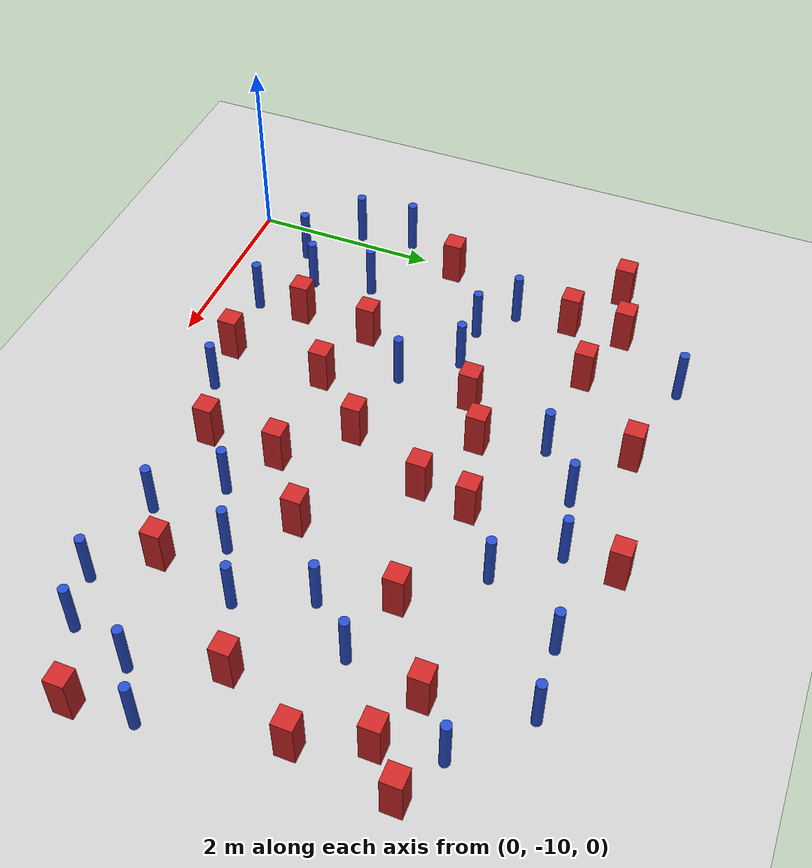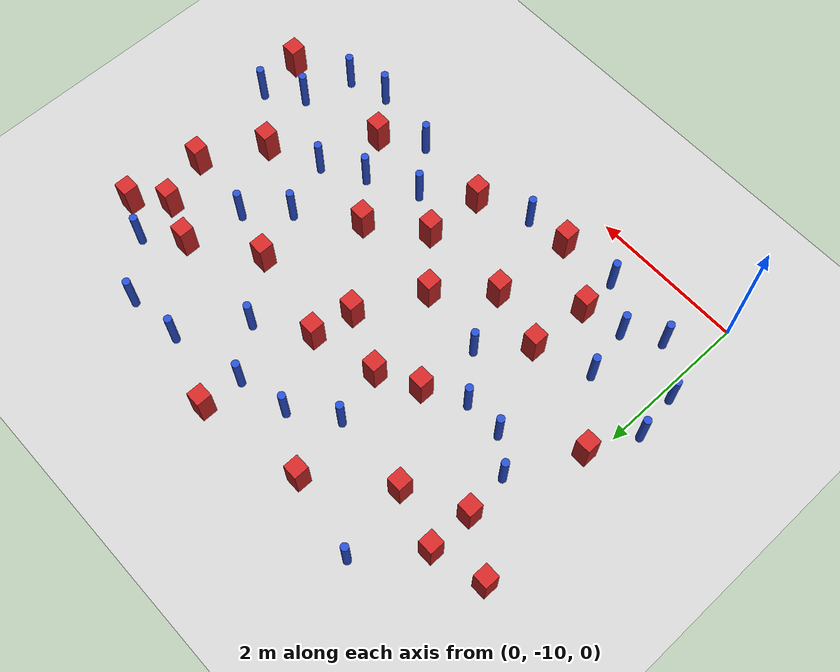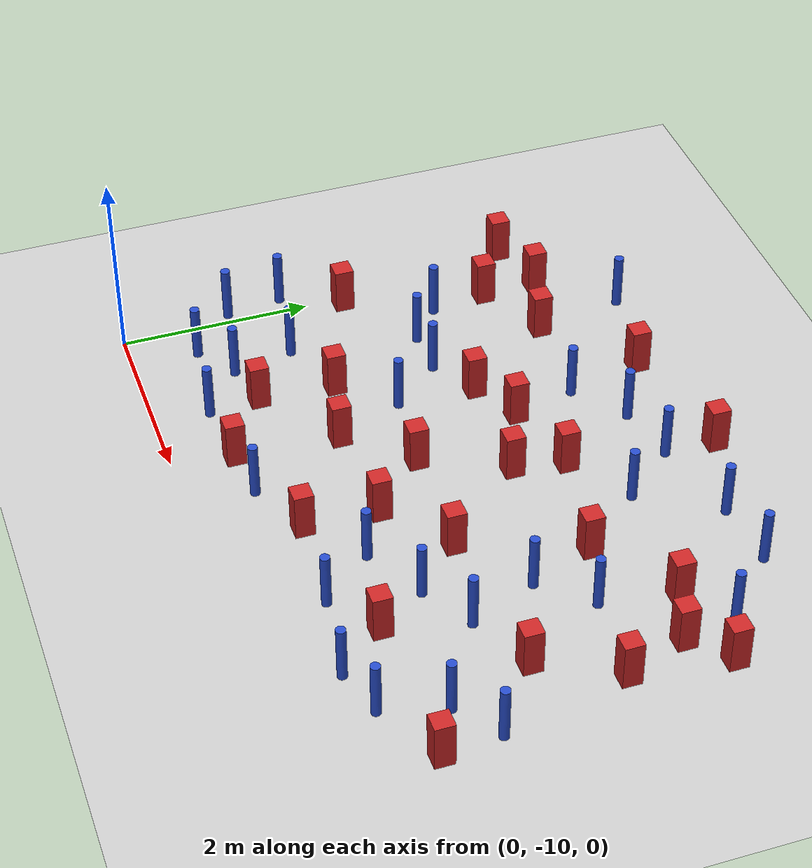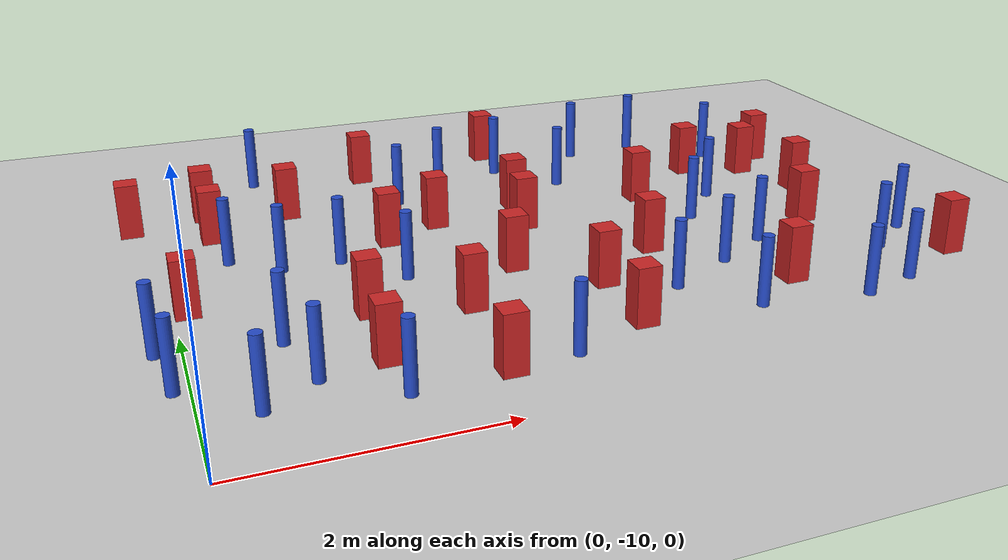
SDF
<sdf version="1.6">
 <world name="default">
  <model name="ground_plane">
   <static>1</static>
   <link name="link">
    <collision name="collision">
     <geometry><plane><normal>0 0 1</normal><size>100 100</size></plane></geometry>
     <surface><friction><ode><mu>100</mu><mu2>50</mu2></ode></friction></surface>
    </collision>
    <visual name="visual">
     <cast_shadows>0</cast_shadows>
     <geometry><plane><normal>0 0 1</normal><size>100 100</size></plane></geometry>
     <material>
      <ambient>1.0 1.0 1.0 1.0</ambient>
      <diffuse>0.8 0.8 0.8 1.0</diffuse>
      <specular>0.01 0.01 0.01 1.000000</specular>
     </material>
    </visual>
   </link>
  </model>
  <model name="pole_obstacle4">
   <static>true</static>
   <pose>-0.115058704292 -8.83198249359 -3.09024884793e-07 -7.19054271912e-07 -2.11315075151e-07 -1.93935509274e-07</pose>
   <link name="link">
    <pose>0 0 0.3 0 -0 0</pose>
    <inertial>
     <mass>1</mass>
     <inertia><ixx>0.145833</ixx><ixy>0</ixy><ixz>0</ixz><iyy>0.145833</iyy><iyz>0</iyz><izz>0.125</izz></inertia>
    </inertial>
    <collision name="collision">
     <geometry><cylinder><radius>0.05</radius><length>.6</length></cylinder></geometry>
    </collision>
    <visual name="visual">
     <geometry><cylinder><radius>0.05</radius><length>.6</length></cylinder></geometry>
     <material>
      <script><name>Gazebo/Blue</name><uri>file://media/materials/scripts/gazebo.material</uri></script>
     </material>
    </visual>
   </link>
  </model>
  <model name="square_post_obstacle6">
   <static>true</static>
   <pose>4.51285772094 -6.5213713689 -4.36207812815e-07 3.75137919937e-06 9.77721102514e-07 2.47381364184e-05</pose>
   <link name="link">
    <pose>0 0 0.25 0 -0 0</pose>
    <inertial>
     <mass>100</mass>
     <inertia>
      <ixx>0.166667</ixx>
      <ixy>0</ixy>
      <ixz>0</ixz>
      <iyy>0.166667</iyy>
      <iyz>0</iyz>
      <izz>0.166667</izz>
     </inertia>
    </inertial>
    <collision name="collision"><geometry><box><size>.2 .2 .5</size></box></geometry></collision>
    <visual name="visual">
     <geometry><box><size>.2 .2 .5</size></box></geometry>
     <material>
      <script><name>Gazebo/Red</name><uri>file://media/materials/scripts/gazebo.material</uri></script>
     </material>
    </visual>
   </link>
  </model>
  <model name="square_post_obstacle8">
   <static>true</static>
   <pose>2.1394990033 -9.37077173725 -4.36207812815e-07 3.75137919937e-06 9.77721102514e-07 2.47381364184e-05</pose>
   <link name="link">
    <pose>0 0 0.25 0 -0 0</pose>
    <inertial>
     <mass>100</mass>
     <inertia>
      <ixx>0.166667</ixx>
      <ixy>0</ixy>
      <ixz>0</ixz>
      <iyy>0.166667</iyy>
      <iyz>0</iyz>
      <izz>0.166667</izz>
     </inertia>
    </inertial>
    <collision name="collision"><geometry><box><size>.2 .2 .5</size></box></geometry></collision>
    <visual name="visual">
     <geometry><box><size>.2 .2 .5</size></box></geometry>
     <material>
      <script><name>Gazebo/Red</name><uri>file://media/materials/scripts/gazebo.material</uri></script>
     </material>
    </visual>
   </link>
  </model>
  <model name="pole_obstacle18">
   <static>true</static>
   <pose>2.68748436693 -9.3146482331 -3.09024884848e-07 -7.19054271902e-07 -2.11315075199e-07 -1.93935509286e-07</pose>
   <link name="link">
    <pose>0 0 0.3 0 -0 0</pose>
    <inertial>
     <mass>1</mass>
     <inertia><ixx>0.145833</ixx><ixy>0</ixy><ixz>0</ixz><iyy>0.145833</iyy><iyz>0</iyz><izz>0.125</izz></inertia>
    </inertial>
    <collision name="collision">
     <geometry><cylinder><radius>0.05</radius><length>.6</length></cylinder></geometry>
    </collision>
    <visual name="visual">
     <geometry><cylinder><radius>0.05</radius><length>.6</length></cylinder></geometry>
     <material>
      <script><name>Gazebo/Blue</name><uri>file://media/materials/scripts/gazebo.material</uri></script>
     </material>
    </visual>
   </link>
  </model>
  <model name="pole_obstacle19">
   <static>true</static>
   <pose>5.15001924405 -5.00147786927 -3.09024884793e-07 -7.19054271911e-07 -2.1131507516e-07 -1.93935509277e-07</pose>
   <link name="link">
    <pose>0 0 0.3 0 -0 0</pose>
    <inertial>
     <mass>1</mass>
     <inertia><ixx>0.145833</ixx><ixy>0</ixy><ixz>0</ixz><iyy>0.145833</iyy><iyz>0</iyz><izz>0.125</izz></inertia>
    </inertial>
    <collision name="collision">
     <geometry><cylinder><radius>0.05</radius><length>.6</length></cylinder></geometry>
    </collision>
    <visual name="visual">
     <geometry><cylinder><radius>0.05</radius><length>.6</length></cylinder></geometry>
     <material>
      <script><name>Gazebo/Blue</name><uri>file://media/materials/scripts/gazebo.material</uri></script>
     </material>
    </visual>
   </link>
  </model>
  <model name="pole_obstacle25">
   <static>true</static>
   <pose>4.43334474144 -5.06521078168 -3.09024884793e-07 -7.19054271911e-07 -2.1131507516e-07 -1.93935509277e-07</pose>
   <link name="link">
    <pose>0 0 0.3 0 -0 0</pose>
    <inertial>
     <mass>1</mass>
     <inertia><ixx>0.145833</ixx><ixy>0</ixy><ixz>0</ixz><iyy>0.145833</iyy><iyz>0</iyz><izz>0.125</izz></inertia>
    </inertial>
    <collision name="collision">
     <geometry><cylinder><radius>0.05</radius><length>.6</length></cylinder></geometry>
    </collision>
    <visual name="visual">
     <geometry><cylinder><radius>0.05</radius><length>.6</length></cylinder></geometry>
     <material>
      <script><name>Gazebo/Blue</name><uri>file://media/materials/scripts/gazebo.material</uri></script>
     </material>
    </visual>
   </link>
  </model>
  <model name="square_post_obstacle29">
   <static>true</static>
   <pose>-0.207751065891 -5.72229155559 -4.36207812815e-07 3.75137919937e-06 9.77721102514e-07 2.47381364184e-05</pose>
   <link name="link">
    <pose>0 0 0.25 0 -0 0</pose>
    <inertial>
     <mass>100</mass>
     <inertia>
      <ixx>0.166667</ixx>
      <ixy>0</ixy>
      <ixz>0</ixz>
      <iyy>0.166667</iyy>
      <iyz>0</iyz>
      <izz>0.166667</izz>
     </inertia>
    </inertial>
    <collision name="collision"><geometry><box><size>.2 .2 .5</size></box></geometry></collision>
    <visual name="visual">
     <geometry><box><size>.2 .2 .5</size></box></geometry>
     <material>
      <script><name>Gazebo/Red</name><uri>file://media/materials/scripts/gazebo.material</uri></script>
     </material>
    </visual>
   </link>
  </model>
  <model name="square_post_obstacle34">
   <static>true</static>
   <pose>0.465647620218 -6.13648864373 -4.36207812815e-07 3.75137919937e-06 9.77721102514e-07 2.47381364184e-05</pose>
   <link name="link">
    <pose>0 0 0.25 0 -0 0</pose>
    <inertial>
     <mass>100</mass>
     <inertia>
      <ixx>0.166667</ixx>
      <ixy>0</ixy>
      <ixz>0</ixz>
      <iyy>0.166667</iyy>
      <iyz>0</iyz>
      <izz>0.166667</izz>
     </inertia>
    </inertial>
    <collision name="collision"><geometry><box><size>.2 .2 .5</size></box></geometry></collision>
    <visual name="visual">
     <geometry><box><size>.2 .2 .5</size></box></geometry>
     <material>
      <script><name>Gazebo/Red</name><uri>file://media/materials/scripts/gazebo.material</uri></script>
     </material>
    </visual>
   </link>
  </model>
  <model name="square_post_obstacle48">
   <static>true</static>
   <pose>2.08679121136 -5.01650331721 -4.36207812815e-07 3.75137919937e-06 9.77721102514e-07 2.47381364184e-05</pose>
   <link name="link">
    <pose>0 0 0.25 0 -0 0</pose>
    <inertial>
     <mass>100</mass>
     <inertia>
      <ixx>0.166667</ixx>
      <ixy>0</ixy>
      <ixz>0</ixz>
      <iyy>0.166667</iyy>
      <iyz>0</iyz>
      <izz>0.166667</izz>
     </inertia>
    </inertial>
    <collision name="collision"><geometry><box><size>.2 .2 .5</size></box></geometry></collision>
    <visual name="visual">
     <geometry><box><size>.2 .2 .5</size></box></geometry>
     <material>
      <script><name>Gazebo/Red</name><uri>file://media/materials/scripts/gazebo.material</uri></script>
     </material>
    </visual>
   </link>
  </model>
  <model name="square_post_obstacle55">
   <static>true</static>
   <pose>3.3022838775 -6.28655651789 -4.36207812815e-07 3.75137919937e-06 9.77721102514e-07 2.47381364184e-05</pose>
   <link name="link">
    <pose>0 0 0.25 0 -0 0</pose>
    <inertial>
     <mass>100</mass>
     <inertia>
      <ixx>0.166667</ixx>
      <ixy>0</ixy>
      <ixz>0</ixz>
      <iyy>0.166667</iyy>
      <iyz>0</iyz>
      <izz>0.166667</izz>
     </inertia>
    </inertial>
    <collision name="collision"><geometry><box><size>.2 .2 .5</size></box></geometry></collision>
    <visual name="visual">
     <geometry><box><size>.2 .2 .5</size></box></geometry>
     <material>
      <script><name>Gazebo/Red</name><uri>file://media/materials/scripts/gazebo.material</uri></script>
     </material>
    </visual>
   </link>
  </model>
  <model name="pole_obstacle70">
   <static>true</static>
   <pose>2.27496375105 -5.82832566073 -3.09024884793e-07 -7.19054271912e-07 -2.11315075134e-07 -1.93935509266e-07</pose>
   <link name="link">
    <pose>0 0 0.3 0 -0 0</pose>
    <inertial>
     <mass>1</mass>
     <inertia><ixx>0.145833</ixx><ixy>0</ixy><ixz>0</ixz><iyy>0.145833</iyy><iyz>0</iyz><izz>0.125</izz></inertia>
    </inertial>
    <collision name="collision">
     <geometry><cylinder><radius>0.05</radius><length>.6</length></cylinder></geometry>
    </collision>
    <visual name="visual">
     <geometry><cylinder><radius>0.05</radius><length>.6</length></cylinder></geometry>
     <material>
      <script><name>Gazebo/Blue</name><uri>file://media/materials/scripts/gazebo.material</uri></script>
     </material>
    </visual>
   </link>
  </model>
  <model name="pole_obstacle74">
   <static>true</static>
   <pose>0.713129846369 -8.3733991202 -3.09024884793e-07 -7.19054271911e-07 -2.11315075158e-07 -1.93935509277e-07</pose>
   <link name="link">
    <pose>0 0 0.3 0 -0 0</pose>
    <inertial>
     <mass>1</mass>
     <inertia><ixx>0.145833</ixx><ixy>0</ixy><ixz>0</ixz><iyy>0.145833</iyy><iyz>0</iyz><izz>0.125</izz></inertia>
    </inertial>
    <collision name="collision">
     <geometry><cylinder><radius>0.05</radius><length>.6</length></cylinder></geometry>
    </collision>
    <visual name="visual">
     <geometry><cylinder><radius>0.05</radius><length>.6</length></cylinder></geometry>
     <material>
      <script><name>Gazebo/Blue</name><uri>file://media/materials/scripts/gazebo.material</uri></script>
     </material>
    </visual>
   </link>
  </model>
  <model name="square_post_obstacle68">
   <static>true</static>
   <pose>1.42236585204 -8.10761064455 -4.36207812815e-07 3.75137919937e-06 9.77721102514e-07 2.47381364184e-05</pose>
   <link name="link">
    <pose>0 0 0.25 0 -0 0</pose>
    <inertial>
     <mass>100</mass>
     <inertia>
      <ixx>0.166667</ixx>
      <ixy>0</ixy>
      <ixz>0</ixz>
      <iyy>0.166667</iyy>
      <iyz>0</iyz>
      <izz>0.166667</izz>
     </inertia>
    </inertial>
    <collision name="collision"><geometry><box><size>.2 .2 .5</size></box></geometry></collision>
    <visual name="visual">
     <geometry><box><size>.2 .2 .5</size></box></geometry>
     <material>
      <script><name>Gazebo/Red</name><uri>file://media/materials/scripts/gazebo.material</uri></script>
     </material>
    </visual>
   </link>
  </model>
  <model name="pole_obstacle80">
   <static>true</static>
   <pose>6.43676853646 -8.1058683709 -3.09024884793e-07 -7.19054271912e-07 -2.1131507513e-07 -1.93935509261e-07</pose>
   <link name="link">
    <pose>0 0 0.3 0 -0 0</pose>
    <inertial>
     <mass>1</mass>
     <inertia><ixx>0.145833</ixx><ixy>0</ixy><ixz>0</ixz><iyy>0.145833</iyy><iyz>0</iyz><izz>0.125</izz></inertia>
    </inertial>
    <collision name="collision">
     <geometry><cylinder><radius>0.05</radius><length>.6</length></cylinder></geometry>
    </collision>
    <visual name="visual">
     <geometry><cylinder><radius>0.05</radius><length>.6</length></cylinder></geometry>
     <material>
      <script><name>Gazebo/Blue</name><uri>file://media/materials/scripts/gazebo.material</uri></script>
     </material>
    </visual>
   </link>
  </model>
  <model name="pole_obstacle82">
   <static>true</static>
   <pose>5.78730302565 -5.5845266317 -3.09024884793e-07 -7.19054271911e-07 -2.1131507516e-07 -1.93935509277e-07</pose>
   <link name="link">
    <pose>0 0 0.3 0 -0 0</pose>
    <inertial>
     <mass>1</mass>
     <inertia><ixx>0.145833</ixx><ixy>0</ixy><ixz>0</ixz><iyy>0.145833</iyy><iyz>0</iyz><izz>0.125</izz></inertia>
    </inertial>
    <collision name="collision">
     <geometry><cylinder><radius>0.05</radius><length>.6</length></cylinder></geometry>
    </collision>
    <visual name="visual">
     <geometry><cylinder><radius>0.05</radius><length>.6</length></cylinder></geometry>
     <material>
      <script><name>Gazebo/Blue</name><uri>file://media/materials/scripts/gazebo.material</uri></script>
     </material>
    </visual>
   </link>
  </model>
  <model name="square_post_obstacle79">
   <static>true</static>
   <pose>2.44633247504 -6.49968213649 -4.36207812815e-07 3.75137919937e-06 9.77721102514e-07 2.47381364184e-05</pose>
   <link name="link">
    <pose>0 0 0.25 0 -0 0</pose>
    <inertial>
     <mass>100</mass>
     <inertia>
      <ixx>0.166667</ixx>
      <ixy>0</ixy>
      <ixz>0</ixz>
      <iyy>0.166667</iyy>
      <iyz>0</iyz>
      <izz>0.166667</izz>
     </inertia>
    </inertial>
    <collision name="collision"><geometry><box><size>.2 .2 .5</size></box></geometry></collision>
    <visual name="visual">
     <geometry><box><size>.2 .2 .5</size></box></geometry>
     <material>
      <script><name>Gazebo/Red</name><uri>file://media/materials/scripts/gazebo.material</uri></script>
     </material>
    </visual>
   </link>
  </model>
  <model name="pole_obstacle91">
   <static>true</static>
   <pose>5.20424854259 -6.71830189902 -3.09024884793e-07 -7.19054271911e-07 -2.1131507516e-07 -1.93935509277e-07</pose>
   <link name="link">
    <pose>0 0 0.3 0 -0 0</pose>
    <inertial>
     <mass>1</mass>
     <inertia><ixx>0.145833</ixx><ixy>0</ixy><ixz>0</ixz><iyy>0.145833</iyy><iyz>0</iyz><izz>0.125</izz></inertia>
    </inertial>
    <collision name="collision">
     <geometry><cylinder><radius>0.05</radius><length>.6</length></cylinder></geometry>
    </collision>
    <visual name="visual">
     <geometry><cylinder><radius>0.05</radius><length>.6</length></cylinder></geometry>
     <material>
      <script><name>Gazebo/Blue</name><uri>file://media/materials/scripts/gazebo.material</uri></script>
     </material>
    </visual>
   </link>
  </model>
  <model name="square_post_obstacle85">
   <static>true</static>
   <pose>3.34084371499 -9.02304019956 -4.36207812815e-07 3.75137919937e-06 9.77721102514e-07 2.47381364184e-05</pose>
   <link name="link">
    <pose>0 0 0.25 0 -0 0</pose>
    <inertial>
     <mass>100</mass>
     <inertia>
      <ixx>0.166667</ixx>
      <ixy>0</ixy>
      <ixz>0</ixz>
      <iyy>0.166667</iyy>
      <iyz>0</iyz>
      <izz>0.166667</izz>
     </inertia>
    </inertial>
    <collision name="collision"><geometry><box><size>.2 .2 .5</size></box></geometry></collision>
    <visual name="visual">
     <geometry><box><size>.2 .2 .5</size></box></geometry>
     <material>
      <script><name>Gazebo/Red</name><uri>file://media/materials/scripts/gazebo.material</uri></script>
     </material>
    </visual>
   </link>
  </model>
  <model name="pole_obstacle94">
   <static>true</static>
   <pose>0.93045135598 -7.04574034802 -3.09024884793e-07 -7.19054271912e-07 -2.11315075129e-07 -1.93935509261e-07</pose>
   <link name="link">
    <pose>0 0 0.3 0 -0 0</pose>
    <inertial>
     <mass>1</mass>
     <inertia><ixx>0.145833</ixx><ixy>0</ixy><ixz>0</ixz><iyy>0.145833</iyy><iyz>0</iyz><izz>0.125</izz></inertia>
    </inertial>
    <collision name="collision">
     <geometry><cylinder><radius>0.05</radius><length>.6</length></cylinder></geometry>
    </collision>
    <visual name="visual">
     <geometry><cylinder><radius>0.05</radius><length>.6</length></cylinder></geometry>
     <material>
      <script><name>Gazebo/Blue</name><uri>file://media/materials/scripts/gazebo.material</uri></script>
     </material>
    </visual>
   </link>
  </model>
  <model name="square_post_obstacle87">
   <static>true</static>
   <pose>1.36780322073 -8.9043474202 -4.36207812815e-07 3.75137919937e-06 9.77721102514e-07 2.47381364184e-05</pose>
   <link name="link">
    <pose>0 0 0.25 0 -0 0</pose>
    <inertial>
     <mass>100</mass>
     <inertia>
      <ixx>0.166667</ixx>
      <ixy>0</ixy>
      <ixz>0</ixz>
      <iyy>0.166667</iyy>
      <iyz>0</iyz>
      <izz>0.166667</izz>
     </inertia>
    </inertial>
    <collision name="collision"><geometry><box><size>.2 .2 .5</size></box></geometry></collision>
    <visual name="visual">
     <geometry><box><size>.2 .2 .5</size></box></geometry>
     <material>
      <script><name>Gazebo/Red</name><uri>file://media/materials/scripts/gazebo.material</uri></script>
     </material>
    </visual>
   </link>
  </model>
  <model name="pole_obstacle95">
   <static>true</static>
   <pose>4.36735843338 -9.0984280892 -3.09024884793e-07 -7.19054271912e-07 -2.1131507513e-07 -1.93935509261e-07</pose>
   <link name="link">
    <pose>0 0 0.3 0 -0 0</pose>
    <inertial>
     <mass>1</mass>
     <inertia><ixx>0.145833</ixx><ixy>0</ixy><ixz>0</ixz><iyy>0.145833</iyy><iyz>0</iyz><izz>0.125</izz></inertia>
    </inertial>
    <collision name="collision">
     <geometry><cylinder><radius>0.05</radius><length>.6</length></cylinder></geometry>
    </collision>
    <visual name="visual">
     <geometry><cylinder><radius>0.05</radius><length>.6</length></cylinder></geometry>
     <material>
      <script><name>Gazebo/Blue</name><uri>file://media/materials/scripts/gazebo.material</uri></script>
     </material>
    </visual>
   </link>
  </model>
  <model name="pole_obstacle103">
   <static>true</static>
   <pose>0.530082113181 -6.72482676579 -3.09024884793e-07 -7.19054271912e-07 -2.1131507513e-07 -1.93935509261e-07</pose>
   <link name="link">
    <pose>0 0 0.3 0 -0 0</pose>
    <inertial>
     <mass>1</mass>
     <inertia><ixx>0.145833</ixx><ixy>0</ixy><ixz>0</ixz><iyy>0.145833</iyy><iyz>0</iyz><izz>0.125</izz></inertia>
    </inertial>
    <collision name="collision">
     <geometry><cylinder><radius>0.05</radius><length>.6</length></cylinder></geometry>
    </collision>
    <visual name="visual">
     <geometry><cylinder><radius>0.05</radius><length>.6</length></cylinder></geometry>
     <material>
      <script><name>Gazebo/Blue</name><uri>file://media/materials/scripts/gazebo.material</uri></script>
     </material>
    </visual>
   </link>
  </model>
  <model name="square_post_obstacle100">
   <static>true</static>
   <pose>6.15156768855 -6.80994731676 -4.36207812815e-07 3.75137919937e-06 9.77721102514e-07 2.47381364184e-05</pose>
   <link name="link">
    <pose>0 0 0.25 0 -0 0</pose>
    <inertial>
     <mass>100</mass>
     <inertia>
      <ixx>0.166667</ixx>
      <ixy>0</ixy>
      <ixz>0</ixz>
      <iyy>0.166667</iyy>
      <iyz>0</iyz>
      <izz>0.166667</izz>
     </inertia>
    </inertial>
    <collision name="collision"><geometry><box><size>.2 .2 .5</size></box></geometry></collision>
    <visual name="visual">
     <geometry><box><size>.2 .2 .5</size></box></geometry>
     <material>
      <script><name>Gazebo/Red</name><uri>file://media/materials/scripts/gazebo.material</uri></script>
     </material>
    </visual>
   </link>
  </model>
  <model name="square_post_obstacle101">
   <static>true</static>
   <pose>2.78489466506 -7.67997605592 -4.36207812815e-07 3.75137919937e-06 9.77721102514e-07 2.47381364184e-05</pose>
   <link name="link">
    <pose>0 0 0.25 0 -0 0</pose>
    <inertial>
     <mass>100</mass>
     <inertia>
      <ixx>0.166667</ixx>
      <ixy>0</ixy>
      <ixz>0</ixz>
      <iyy>0.166667</iyy>
      <iyz>0</iyz>
      <izz>0.166667</izz>
     </inertia>
    </inertial>
    <collision name="collision"><geometry><box><size>.2 .2 .5</size></box></geometry></collision>
    <visual name="visual">
     <geometry><box><size>.2 .2 .5</size></box></geometry>
     <material>
      <script><name>Gazebo/Red</name><uri>file://media/materials/scripts/gazebo.material</uri></script>
     </material>
    </visual>
   </link>
  </model>
  <model name="square_post_obstacle104">
   <static>true</static>
   <pose>5.34188920313 -5.95813045349 -4.36207812815e-07 3.75137919937e-06 9.77721102514e-07 2.47381364184e-05</pose>
   <link name="link">
    <pose>0 0 0.25 0 -0 0</pose>
    <inertial>
     <mass>100</mass>
     <inertia>
      <ixx>0.166667</ixx>
      <ixy>0</ixy>
      <ixz>0</ixz>
      <iyy>0.166667</iyy>
      <iyz>0</iyz>
      <izz>0.166667</izz>
     </inertia>
    </inertial>
    <collision name="collision"><geometry><box><size>.2 .2 .5</size></box></geometry></collision>
    <visual name="visual">
     <geometry><box><size>.2 .2 .5</size></box></geometry>
     <material>
      <script><name>Gazebo/Red</name><uri>file://media/materials/scripts/gazebo.material</uri></script>
     </material>
    </visual>
   </link>
  </model>
  <model name="pole_obstacle111">
   <static>true</static>
   <pose>3.46028985631 -5.28692378965 -3.09024884793e-07 -7.19054271912e-07 -2.11315075134e-07 -1.93935509266e-07</pose>
   <link name="link">
    <pose>0 0 0.3 0 -0 0</pose>
    <inertial>
     <mass>1</mass>
     <inertia><ixx>0.145833</ixx><ixy>0</ixy><ixz>0</ixz><iyy>0.145833</iyy><iyz>0</iyz><izz>0.125</izz></inertia>
    </inertial>
    <collision name="collision">
     <geometry><cylinder><radius>0.05</radius><length>.6</length></cylinder></geometry>
    </collision>
    <visual name="visual">
     <geometry><cylinder><radius>0.05</radius><length>.6</length></cylinder></geometry>
     <material>
      <script><name>Gazebo/Blue</name><uri>file://media/materials/scripts/gazebo.material</uri></script>
     </material>
    </visual>
   </link>
  </model>
  <model name="square_post_obstacle106">
   <static>true</static>
   <pose>4.87099361069 -8.73602397665 -4.36207812815e-07 3.75137919937e-06 9.77721102514e-07 2.47381364184e-05</pose>
   <link name="link">
    <pose>0 0 0.25 0 -0 0</pose>
    <inertial>
     <mass>100</mass>
     <inertia>
      <ixx>0.166667</ixx>
      <ixy>0</ixy>
      <ixz>0</ixz>
      <iyy>0.166667</iyy>
      <iyz>0</iyz>
      <izz>0.166667</izz>
     </inertia>
    </inertial>
    <collision name="collision"><geometry><box><size>.2 .2 .5</size></box></geometry></collision>
    <visual name="visual">
     <geometry><box><size>.2 .2 .5</size></box></geometry>
     <material>
      <script><name>Gazebo/Red</name><uri>file://media/materials/scripts/gazebo.material</uri></script>
     </material>
    </visual>
   </link>
  </model>
  <model name="pole_obstacle112">
   <static>true</static>
   <pose>0.845355604112 -9.01583414923 -3.09024884793e-07 -7.19054271911e-07 -2.11315075158e-07 -1.93935509277e-07</pose>
   <link name="link">
    <pose>0 0 0.3 0 -0 0</pose>
    <inertial>
     <mass>1</mass>
     <inertia><ixx>0.145833</ixx><ixy>0</ixy><ixz>0</ixz><iyy>0.145833</iyy><iyz>0</iyz><izz>0.125</izz></inertia>
    </inertial>
    <collision name="collision">
     <geometry><cylinder><radius>0.05</radius><length>.6</length></cylinder></geometry>
    </collision>
    <visual name="visual">
     <geometry><cylinder><radius>0.05</radius><length>.6</length></cylinder></geometry>
     <material>
      <script><name>Gazebo/Blue</name><uri>file://media/materials/scripts/gazebo.material</uri></script>
     </material>
    </visual>
   </link>
  </model>
  <model name="square_post_obstacle110">
   <static>true</static>
   <pose>3.37158378577 -8.25413593069 -4.36207812815e-07 3.75137919937e-06 9.77721102514e-07 2.47381364184e-05</pose>
   <link name="link">
    <pose>0 0 0.25 0 -0 0</pose>
    <inertial>
     <mass>100</mass>
     <inertia>
      <ixx>0.166667</ixx>
      <ixy>0</ixy>
      <ixz>0</ixz>
      <iyy>0.166667</iyy>
      <iyz>0</iyz>
      <izz>0.166667</izz>
     </inertia>
    </inertial>
    <collision name="collision"><geometry><box><size>.2 .2 .5</size></box></geometry></collision>
    <visual name="visual">
     <geometry><box><size>.2 .2 .5</size></box></geometry>
     <material>
      <script><name>Gazebo/Red</name><uri>file://media/materials/scripts/gazebo.material</uri></script>
     </material>
    </visual>
   </link>
  </model>
  <model name="pole_obstacle115">
   <static>true</static>
   <pose>5.98828541689 -8.43837462318 -3.09024884793e-07 -7.19054271912e-07 -2.1131507513e-07 -1.93935509261e-07</pose>
   <link name="link">
    <pose>0 0 0.3 0 -0 0</pose>
    <inertial>
     <mass>1</mass>
     <inertia><ixx>0.145833</ixx><ixy>0</ixy><ixz>0</ixz><iyy>0.145833</iyy><iyz>0</iyz><izz>0.125</izz></inertia>
    </inertial>
    <collision name="collision">
     <geometry><cylinder><radius>0.05</radius><length>.6</length></cylinder></geometry>
    </collision>
    <visual name="visual">
     <geometry><cylinder><radius>0.05</radius><length>.6</length></cylinder></geometry>
     <material>
      <script><name>Gazebo/Blue</name><uri>file://media/materials/scripts/gazebo.material</uri></script>
     </material>
    </visual>
   </link>
  </model>
  <model name="pole_obstacle129">
   <static>true</static>
   <pose>1.43752903527 -7.04459980551 -3.09024884793e-07 -7.19054271912e-07 -2.11315075134e-07 -1.93935509265e-07</pose>
   <link name="link">
    <pose>0 0 0.3 0 -0 0</pose>
    <inertial>
     <mass>1</mass>
     <inertia><ixx>0.145833</ixx><ixy>0</ixy><ixz>0</ixz><iyy>0.145833</iyy><iyz>0</iyz><izz>0.125</izz></inertia>
    </inertial>
    <collision name="collision">
     <geometry><cylinder><radius>0.05</radius><length>.6</length></cylinder></geometry>
    </collision>
    <visual name="visual">
     <geometry><cylinder><radius>0.05</radius><length>.6</length></cylinder></geometry>
     <material>
      <script><name>Gazebo/Blue</name><uri>file://media/materials/scripts/gazebo.material</uri></script>
     </material>
    </visual>
   </link>
  </model>
  <model name="square_post_obstacle131">
   <static>true</static>
   <pose>4.04311621594 -7.73186707765 -4.36207812815e-07 3.75137919937e-06 9.77721102514e-07 2.47381364184e-05</pose>
   <link name="link">
    <pose>0 0 0.25 0 -0 0</pose>
    <inertial>
     <mass>100</mass>
     <inertia>
      <ixx>0.166667</ixx>
      <ixy>0</ixy>
      <ixz>0</ixz>
      <iyy>0.166667</iyy>
      <iyz>0</iyz>
      <izz>0.166667</izz>
     </inertia>
    </inertial>
    <collision name="collision"><geometry><box><size>.2 .2 .5</size></box></geometry></collision>
    <visual name="visual">
     <geometry><box><size>.2 .2 .5</size></box></geometry>
     <material>
      <script><name>Gazebo/Red</name><uri>file://media/materials/scripts/gazebo.material</uri></script>
     </material>
    </visual>
   </link>
  </model>
  <model name="pole_obstacle137">
   <static>true</static>
   <pose>0.417961906729 -9.30295366883 -3.09024884793e-07 -7.19054271911e-07 -2.11315075166e-07 -1.93935509282e-07</pose>
   <link name="link">
    <pose>0 0 0.3 0 -0 0</pose>
    <inertial>
     <mass>1</mass>
     <inertia><ixx>0.145833</ixx><ixy>0</ixy><ixz>0</ixz><iyy>0.145833</iyy><iyz>0</iyz><izz>0.125</izz></inertia>
    </inertial>
    <collision name="collision">
     <geometry><cylinder><radius>0.05</radius><length>.6</length></cylinder></geometry>
    </collision>
    <visual name="visual">
     <geometry><cylinder><radius>0.05</radius><length>.6</length></cylinder></geometry>
     <material>
      <script><name>Gazebo/Blue</name><uri>file://media/materials/scripts/gazebo.material</uri></script>
     </material>
    </visual>
   </link>
  </model>
  <model name="square_post_obstacle137">
   <static>true</static>
   <pose>5.90464166863 -6.15945527915 -4.36207812815e-07 3.75137919937e-06 9.77721102514e-07 2.47381364184e-05</pose>
   <link name="link">
    <pose>0 0 0.25 0 -0 0</pose>
    <inertial>
     <mass>100</mass>
     <inertia>
      <ixx>0.166667</ixx>
      <ixy>0</ixy>
      <ixz>0</ixz>
      <iyy>0.166667</iyy>
      <iyz>0</iyz>
      <izz>0.166667</izz>
     </inertia>
    </inertial>
    <collision name="collision"><geometry><box><size>.2 .2 .5</size></box></geometry></collision>
    <visual name="visual">
     <geometry><box><size>.2 .2 .5</size></box></geometry>
     <material>
      <script><name>Gazebo/Red</name><uri>file://media/materials/scripts/gazebo.material</uri></script>
     </material>
    </visual>
   </link>
  </model>
  <model name="square_post_obstacle138">
   <static>true</static>
   <pose>6.27733112778 -5.81827859508 -4.36207812815e-07 3.75137919937e-06 9.77721102514e-07 2.47381364184e-05</pose>
   <link name="link">
    <pose>0 0 0.25 0 -0 0</pose>
    <inertial>
     <mass>100</mass>
     <inertia>
      <ixx>0.166667</ixx>
      <ixy>0</ixy>
      <ixz>0</ixz>
      <iyy>0.166667</iyy>
      <iyz>0</iyz>
      <izz>0.166667</izz>
     </inertia>
    </inertial>
    <collision name="collision"><geometry><box><size>.2 .2 .5</size></box></geometry></collision>
    <visual name="visual">
     <geometry><box><size>.2 .2 .5</size></box></geometry>
     <material>
      <script><name>Gazebo/Red</name><uri>file://media/materials/scripts/gazebo.material</uri></script>
     </material>
    </visual>
   </link>
  </model>
  <model name="square_post_obstacle145">
   <static>true</static>
   <pose>1.93124634727 -6.76251794476 -4.36207812815e-07 3.75137919937e-06 9.77721102514e-07 2.47381364184e-05</pose>
   <link name="link">
    <pose>0 0 0.25 0 -0 0</pose>
    <inertial>
     <mass>100</mass>
     <inertia>
      <ixx>0.166667</ixx>
      <ixy>0</ixy>
      <ixz>0</ixz>
      <iyy>0.166667</iyy>
      <iyz>0</iyz>
      <izz>0.166667</izz>
     </inertia>
    </inertial>
    <collision name="collision"><geometry><box><size>.2 .2 .5</size></box></geometry></collision>
    <visual name="visual">
     <geometry><box><size>.2 .2 .5</size></box></geometry>
     <material>
      <script><name>Gazebo/Red</name><uri>file://media/materials/scripts/gazebo.material</uri></script>
     </material>
    </visual>
   </link>
  </model>
  <model name="square_post_obstacle152">
   <static>true</static>
   <pose>1.20539237955 -5.76715562956 -4.36207812815e-07 3.75137919937e-06 9.77721102514e-07 2.47381364184e-05</pose>
   <link name="link">
    <pose>0 0 0.25 0 -0 0</pose>
    <inertial>
     <mass>100</mass>
     <inertia>
      <ixx>0.166667</ixx>
      <ixy>0</ixy>
      <ixz>0</ixz>
      <iyy>0.166667</iyy>
      <iyz>0</iyz>
      <izz>0.166667</izz>
     </inertia>
    </inertial>
    <collision name="collision"><geometry><box><size>.2 .2 .5</size></box></geometry></collision>
    <visual name="visual">
     <geometry><box><size>.2 .2 .5</size></box></geometry>
     <material>
      <script><name>Gazebo/Red</name><uri>file://media/materials/scripts/gazebo.material</uri></script>
     </material>
    </visual>
   </link>
  </model>
  <model name="pole_obstacle160">
   <static>true</static>
   <pose>-0.19596446907 -8.23723813775 -3.09024884793e-07 -7.19054271911e-07 -2.11315075161e-07 -1.9393550928e-07</pose>
   <link name="link">
    <pose>0 0 0.3 0 -0 0</pose>
    <inertial>
     <mass>1</mass>
     <inertia><ixx>0.145833</ixx><ixy>0</ixy><ixz>0</ixz><iyy>0.145833</iyy><iyz>0</iyz><izz>0.125</izz></inertia>
    </inertial>
    <collision name="collision">
     <geometry><cylinder><radius>0.05</radius><length>.6</length></cylinder></geometry>
    </collision>
    <visual name="visual">
     <geometry><cylinder><radius>0.05</radius><length>.6</length></cylinder></geometry>
     <material>
      <script><name>Gazebo/Blue</name><uri>file://media/materials/scripts/gazebo.material</uri></script>
     </material>
    </visual>
   </link>
  </model>
  <model name="square_post_obstacle155">
   <static>true</static>
   <pose>0.100187672457 -7.61152136245 -4.36207812815e-07 3.75137919937e-06 9.77721102514e-07 2.47381364184e-05</pose>
   <link name="link">
    <pose>0 0 0.25 0 -0 0</pose>
    <inertial>
     <mass>100</mass>
     <inertia>
      <ixx>0.166667</ixx>
      <ixy>0</ixy>
      <ixz>0</ixz>
      <iyy>0.166667</iyy>
      <iyz>0</iyz>
      <izz>0.166667</izz>
     </inertia>
    </inertial>
    <collision name="collision"><geometry><box><size>.2 .2 .5</size></box></geometry></collision>
    <visual name="visual">
     <geometry><box><size>.2 .2 .5</size></box></geometry>
     <material>
      <script><name>Gazebo/Red</name><uri>file://media/materials/scripts/gazebo.material</uri></script>
     </material>
    </visual>
   </link>
  </model>
  <model name="square_post_obstacle170">
   <static>true</static>
   <pose>2.21069390472 -8.29624163485 -4.36207812815e-07 3.75137919937e-06 9.77721102514e-07 2.47381364184e-05</pose>
   <link name="link">
    <pose>0 0 0.25 0 -0 0</pose>
    <inertial>
     <mass>100</mass>
     <inertia>
      <ixx>0.166667</ixx>
      <ixy>0</ixy>
      <ixz>0</ixz>
      <iyy>0.166667</iyy>
      <iyz>0</iyz>
      <izz>0.166667</izz>
     </inertia>
    </inertial>
    <collision name="collision"><geometry><box><size>.2 .2 .5</size></box></geometry></collision>
    <visual name="visual">
     <geometry><box><size>.2 .2 .5</size></box></geometry>
     <material>
      <script><name>Gazebo/Red</name><uri>file://media/materials/scripts/gazebo.material</uri></script>
     </material>
    </visual>
   </link>
  </model>
  <model name="pole_obstacle173">
   <static>true</static>
   <pose>3.94344183563 -5.8504331306 -3.09024884793e-07 -7.19054271912e-07 -2.11315075134e-07 -1.93935509266e-07</pose>
   <link name="link">
    <pose>0 0 0.3 0 -0 0</pose>
    <inertial>
     <mass>1</mass>
     <inertia><ixx>0.145833</ixx><ixy>0</ixy><ixz>0</ixz><iyy>0.145833</iyy><iyz>0</iyz><izz>0.125</izz></inertia>
    </inertial>
    <collision name="collision">
     <geometry><cylinder><radius>0.05</radius><length>.6</length></cylinder></geometry>
    </collision>
    <visual name="visual">
     <geometry><cylinder><radius>0.05</radius><length>.6</length></cylinder></geometry>
     <material>
      <script><name>Gazebo/Blue</name><uri>file://media/materials/scripts/gazebo.material</uri></script>
     </material>
    </visual>
   </link>
  </model>
  <model name="pole_obstacle176">
   <static>true</static>
   <pose>4.76705744583 -7.19642061634 -3.09024884793e-07 -7.19054271911e-07 -2.1131507516e-07 -1.93935509277e-07</pose>
   <link name="link">
    <pose>0 0 0.3 0 -0 0</pose>
    <inertial>
     <mass>1</mass>
     <inertia><ixx>0.145833</ixx><ixy>0</ixy><ixz>0</ixz><iyy>0.145833</iyy><iyz>0</iyz><izz>0.125</izz></inertia>
    </inertial>
    <collision name="collision">
     <geometry><cylinder><radius>0.05</radius><length>.6</length></cylinder></geometry>
    </collision>
    <visual name="visual">
     <geometry><cylinder><radius>0.05</radius><length>.6</length></cylinder></geometry>
     <material>
      <script><name>Gazebo/Blue</name><uri>file://media/materials/scripts/gazebo.material</uri></script>
     </material>
    </visual>
   </link>
  </model>
  <model name="square_post_obstacle176">
   <static>true</static>
   <pose>3.20734523176 -6.8222601743 -4.36207812815e-07 3.75137919937e-06 9.77721102514e-07 2.47381364184e-05</pose>
   <link name="link">
    <pose>0 0 0.25 0 -0 0</pose>
    <inertial>
     <mass>100</mass>
     <inertia>
      <ixx>0.166667</ixx>
      <ixy>0</ixy>
      <ixz>0</ixz>
      <iyy>0.166667</iyy>
      <iyz>0</iyz>
      <izz>0.166667</izz>
     </inertia>
    </inertial>
    <collision name="collision"><geometry><box><size>.2 .2 .5</size></box></geometry></collision>
    <visual name="visual">
     <geometry><box><size>.2 .2 .5</size></box></geometry>
     <material>
      <script><name>Gazebo/Red</name><uri>file://media/materials/scripts/gazebo.material</uri></script>
     </material>
    </visual>
   </link>
  </model>
  <model name="square_post_obstacle192">
   <static>true</static>
   <pose>6.49307573611 -8.70673496936 -4.36207812815e-07 3.75137919937e-06 9.77721102514e-07 2.47381364184e-05</pose>
   <link name="link">
    <pose>0 0 0.25 0 -0 0</pose>
    <inertial>
     <mass>100</mass>
     <inertia>
      <ixx>0.166667</ixx>
      <ixy>0</ixy>
      <ixz>0</ixz>
      <iyy>0.166667</iyy>
      <iyz>0</iyz>
      <izz>0.166667</izz>
     </inertia>
    </inertial>
    <collision name="collision"><geometry><box><size>.2 .2 .5</size></box></geometry></collision>
    <visual name="visual">
     <geometry><box><size>.2 .2 .5</size></box></geometry>
     <material>
      <script><name>Gazebo/Red</name><uri>file://media/materials/scripts/gazebo.material</uri></script>
     </material>
    </visual>
   </link>
  </model>
  <model name="pole_obstacle189">
   <static>true</static>
   <pose>4.53420084405 -8.21849786372 -3.09024884793e-07 -7.19054271912e-07 -2.1131507513e-07 -1.93935509261e-07</pose>
   <link name="link">
    <pose>0 0 0.3 0 -0 0</pose>
    <inertial>
     <mass>1</mass>
     <inertia><ixx>0.145833</ixx><ixy>0</ixy><ixz>0</ixz><iyy>0.145833</iyy><iyz>0</iyz><izz>0.125</izz></inertia>
    </inertial>
    <collision name="collision">
     <geometry><cylinder><radius>0.05</radius><length>.6</length></cylinder></geometry>
    </collision>
    <visual name="visual">
     <geometry><cylinder><radius>0.05</radius><length>.6</length></cylinder></geometry>
     <material>
      <script><name>Gazebo/Blue</name><uri>file://media/materials/scripts/gazebo.material</uri></script>
     </material>
    </visual>
   </link>
  </model>
  <model name="square_post_obstacle199">
   <static>true</static>
   <pose>3.48951971235 -4.76056075481 -4.36207812815e-07 3.75137919937e-06 9.77721102514e-07 2.47381364184e-05</pose>
   <link name="link">
    <pose>0 0 0.25 0 -0 0</pose>
    <inertial>
     <mass>100</mass>
     <inertia>
      <ixx>0.166667</ixx>
      <ixy>0</ixy>
      <ixz>0</ixz>
      <iyy>0.166667</iyy>
      <iyz>0</iyz>
      <izz>0.166667</izz>
     </inertia>
    </inertial>
    <collision name="collision"><geometry><box><size>.2 .2 .5</size></box></geometry></collision>
    <visual name="visual">
     <geometry><box><size>.2 .2 .5</size></box></geometry>
     <material>
      <script><name>Gazebo/Red</name><uri>file://media/materials/scripts/gazebo.material</uri></script>
     </material>
    </visual>
   </link>
  </model>
  <model name="pole_obstacle192">
   <static>true</static>
   <pose>5.063393201 -7.90414691385 -3.09024884793e-07 -7.19054271911e-07 -2.1131507516e-07 -1.93935509277e-07</pose>
   <link name="link">
    <pose>0 0 0.3 0 -0 0</pose>
    <inertial>
     <mass>1</mass>
     <inertia><ixx>0.145833</ixx><ixy>0</ixy><ixz>0</ixz><iyy>0.145833</iyy><iyz>0</iyz><izz>0.125</izz></inertia>
    </inertial>
    <collision name="collision">
     <geometry><cylinder><radius>0.05</radius><length>.6</length></cylinder></geometry>
    </collision>
    <visual name="visual">
     <geometry><cylinder><radius>0.05</radius><length>.6</length></cylinder></geometry>
     <material>
      <script><name>Gazebo/Blue</name><uri>file://media/materials/scripts/gazebo.material</uri></script>
     </material>
    </visual>
   </link>
  </model>
  <model name="square_post_obstacle202">
   <static>true</static>
   <pose>5.72202145579 -7.59530842307 -4.36207812815e-07 3.75137919937e-06 9.77721102514e-07 2.47381364184e-05</pose>
   <link name="link">
    <pose>0 0 0.25 0 -0 0</pose>
    <inertial>
     <mass>100</mass>
     <inertia>
      <ixx>0.166667</ixx>
      <ixy>0</ixy>
      <ixz>0</ixz>
      <iyy>0.166667</iyy>
      <iyz>0</iyz>
      <izz>0.166667</izz>
     </inertia>
    </inertial>
    <collision name="collision"><geometry><box><size>.2 .2 .5</size></box></geometry></collision>
    <visual name="visual">
     <geometry><box><size>.2 .2 .5</size></box></geometry>
     <material>
      <script><name>Gazebo/Red</name><uri>file://media/materials/scripts/gazebo.material</uri></script>
     </material>
    </visual>
   </link>
  </model>
  <model name="pole_obstacle193">
   <static>true</static>
   <pose>1.02538094527 -4.80733408901 -3.09024884793e-07 -7.19054271912e-07 -2.11315075136e-07 -1.93935509265e-07</pose>
   <link name="link">
    <pose>0 0 0.3 0 -0 0</pose>
    <inertial>
     <mass>1</mass>
     <inertia><ixx>0.145833</ixx><ixy>0</ixy><ixz>0</ixz><iyy>0.145833</iyy><iyz>0</iyz><izz>0.125</izz></inertia>
    </inertial>
    <collision name="collision">
     <geometry><cylinder><radius>0.05</radius><length>.6</length></cylinder></geometry>
    </collision>
    <visual name="visual">
     <geometry><cylinder><radius>0.05</radius><length>.6</length></cylinder></geometry>
     <material>
      <script><name>Gazebo/Blue</name><uri>file://media/materials/scripts/gazebo.material</uri></script>
     </material>
    </visual>
   </link>
  </model>
  <model name="pole_obstacle201">
   <static>true</static>
   <pose>2.80608947051 -5.42301076141 -3.09024884793e-07 -7.19054271912e-07 -2.11315075134e-07 -1.93935509266e-07</pose>
   <link name="link">
    <pose>0 0 0.3 0 -0 0</pose>
    <inertial>
     <mass>1</mass>
     <inertia><ixx>0.145833</ixx><ixy>0</ixy><ixz>0</ixz><iyy>0.145833</iyy><iyz>0</iyz><izz>0.125</izz></inertia>
    </inertial>
    <collision name="collision">
     <geometry><cylinder><radius>0.05</radius><length>.6</length></cylinder></geometry>
    </collision>
    <visual name="visual">
     <geometry><cylinder><radius>0.05</radius><length>.6</length></cylinder></geometry>
     <material>
      <script><name>Gazebo/Blue</name><uri>file://media/materials/scripts/gazebo.material</uri></script>
     </material>
    </visual>
   </link>
  </model>
  <model name="pole_obstacle205">
   <static>true</static>
   <pose>5.80380381056 -9.07826081762 -3.09024884793e-07 -7.19054271912e-07 -2.1131507513e-07 -1.93935509261e-07</pose>
   <link name="link">
    <pose>0 0 0.3 0 -0 0</pose>
    <inertial>
     <mass>1</mass>
     <inertia><ixx>0.145833</ixx><ixy>0</ixy><ixz>0</ixz><iyy>0.145833</iyy><iyz>0</iyz><izz>0.125</izz></inertia>
    </inertial>
    <collision name="collision">
     <geometry><cylinder><radius>0.05</radius><length>.6</length></cylinder></geometry>
    </collision>
    <visual name="visual">
     <geometry><cylinder><radius>0.05</radius><length>.6</length></cylinder></geometry>
     <material>
      <script><name>Gazebo/Blue</name><uri>file://media/materials/scripts/gazebo.material</uri></script>
     </material>
    </visual>
   </link>
  </model>
  <model name="square_post_obstacle209">
   <static>true</static>
   <pose>0.459333454154 -5.5457782798 -4.36207812815e-07 3.75137919937e-06 9.77721102514e-07 2.47381364184e-05</pose>
   <link name="link">
    <pose>0 0 0.25 0 -0 0</pose>
    <inertial>
     <mass>100</mass>
     <inertia>
      <ixx>0.166667</ixx>
      <ixy>0</ixy>
      <ixz>0</ixz>
      <iyy>0.166667</iyy>
      <iyz>0</iyz>
      <izz>0.166667</izz>
     </inertia>
    </inertial>
    <collision name="collision"><geometry><box><size>.2 .2 .5</size></box></geometry></collision>
    <visual name="visual">
     <geometry><box><size>.2 .2 .5</size></box></geometry>
     <material>
      <script><name>Gazebo/Red</name><uri>file://media/materials/scripts/gazebo.material</uri></script>
     </material>
    </visual>
   </link>
  </model>
  <model name="pole_obstacle216">
   <static>true</static>
   <pose>3.8998895978 -8.55203847642 -3.09024884848e-07 -7.19054271902e-07 -2.11315075199e-07 -1.93935509286e-07</pose>
   <link name="link">
    <pose>0 0 0.3 0 -0 0</pose>
    <inertial>
     <mass>1</mass>
     <inertia><ixx>0.145833</ixx><ixy>0</ixy><ixz>0</ixz><iyy>0.145833</iyy><iyz>0</iyz><izz>0.125</izz></inertia>
    </inertial>
    <collision name="collision">
     <geometry><cylinder><radius>0.05</radius><length>.6</length></cylinder></geometry>
    </collision>
    <visual name="visual">
     <geometry><cylinder><radius>0.05</radius><length>.6</length></cylinder></geometry>
     <material>
      <script><name>Gazebo/Blue</name><uri>file://media/materials/scripts/gazebo.material</uri></script>
     </material>
    </visual>
   </link>
  </model>
  <model name="pole_obstacle218">
   <static>true</static>
   <pose>1.39056107174 -9.42944029466 -3.09024884793e-07 -7.19054271912e-07 -2.1131507515e-07 -1.93935509273e-07</pose>
   <link name="link">
    <pose>0 0 0.3 0 -0 0</pose>
    <inertial>
     <mass>1</mass>
     <inertia><ixx>0.145833</ixx><ixy>0</ixy><ixz>0</ixz><iyy>0.145833</iyy><iyz>0</iyz><izz>0.125</izz></inertia>
    </inertial>
    <collision name="collision">
     <geometry><cylinder><radius>0.05</radius><length>.6</length></cylinder></geometry>
    </collision>
    <visual name="visual">
     <geometry><cylinder><radius>0.05</radius><length>.6</length></cylinder></geometry>
     <material>
      <script><name>Gazebo/Blue</name><uri>file://media/materials/scripts/gazebo.material</uri></script>
     </material>
    </visual>
   </link>
  </model>
  <model name="pole_obstacle219">
   <static>true</static>
   <pose>1.88743988733 -7.56894895654 -3.09024884793e-07 -7.19054271912e-07 -2.11315075134e-07 -1.93935509265e-07</pose>
   <link name="link">
    <pose>0 0 0.3 0 -0 0</pose>
    <inertial>
     <mass>1</mass>
     <inertia><ixx>0.145833</ixx><ixy>0</ixy><ixz>0</ixz><iyy>0.145833</iyy><iyz>0</iyz><izz>0.125</izz></inertia>
    </inertial>
    <collision name="collision">
     <geometry><cylinder><radius>0.05</radius><length>.6</length></cylinder></geometry>
    </collision>
    <visual name="visual">
     <geometry><cylinder><radius>0.05</radius><length>.6</length></cylinder></geometry>
     <material>
      <script><name>Gazebo/Blue</name><uri>file://media/materials/scripts/gazebo.material</uri></script>
     </material>
    </visual>
   </link>
  </model>
  <model name="pole_obstacle227">
   <static>true</static>
   <pose>5.28984000976 -9.23310997922 -3.09024884793e-07 -7.19054271912e-07 -2.1131507513e-07 -1.93935509261e-07</pose>
   <link name="link">
    <pose>0 0 0.3 0 -0 0</pose>
    <inertial>
     <mass>1</mass>
     <inertia><ixx>0.145833</ixx><ixy>0</ixy><ixz>0</ixz><iyy>0.145833</iyy><iyz>0</iyz><izz>0.125</izz></inertia>
    </inertial>
    <collision name="collision">
     <geometry><cylinder><radius>0.05</radius><length>.6</length></cylinder></geometry>
    </collision>
    <visual name="visual">
     <geometry><cylinder><radius>0.05</radius><length>.6</length></cylinder></geometry>
     <material>
      <script><name>Gazebo/Blue</name><uri>file://media/materials/scripts/gazebo.material</uri></script>
     </material>
    </visual>
   </link>
  </model>
 </world>
</sdf>
